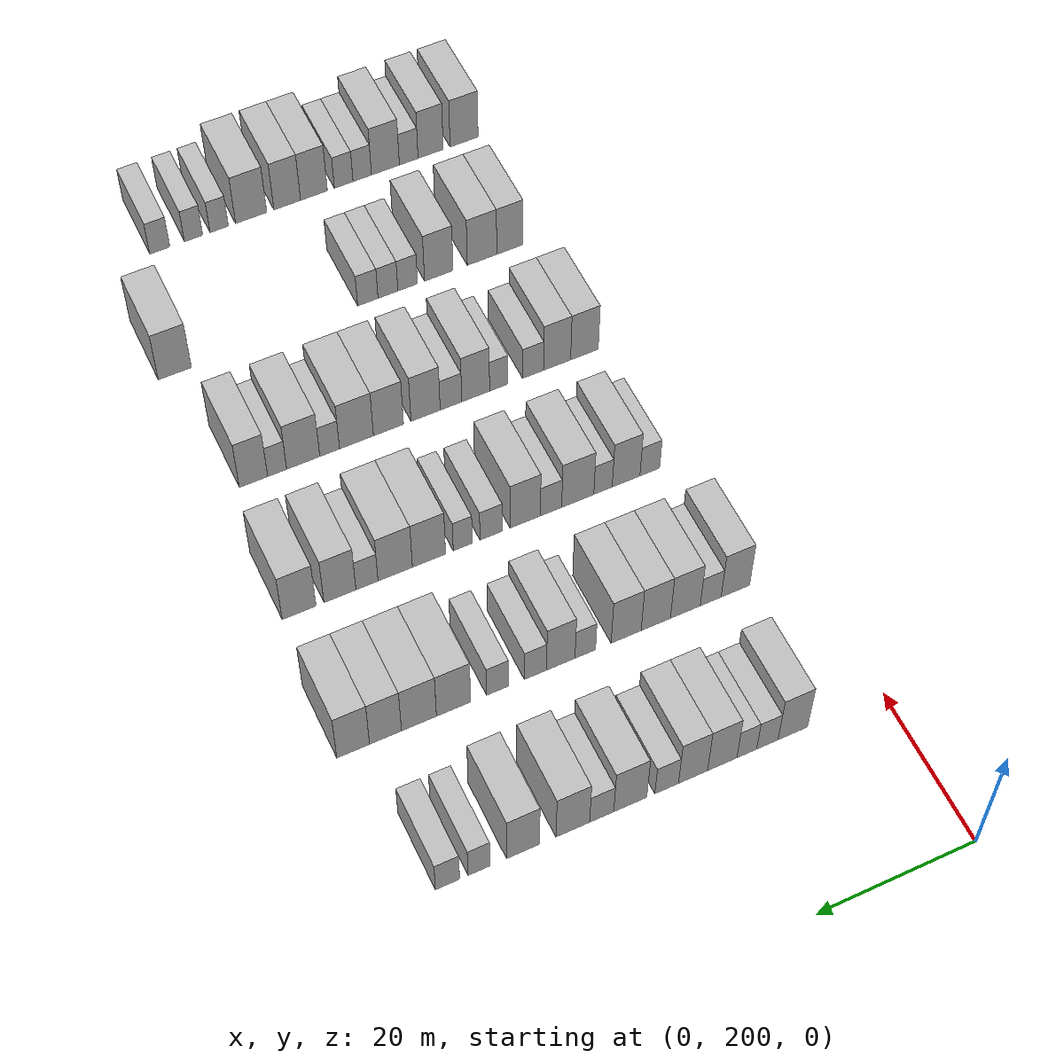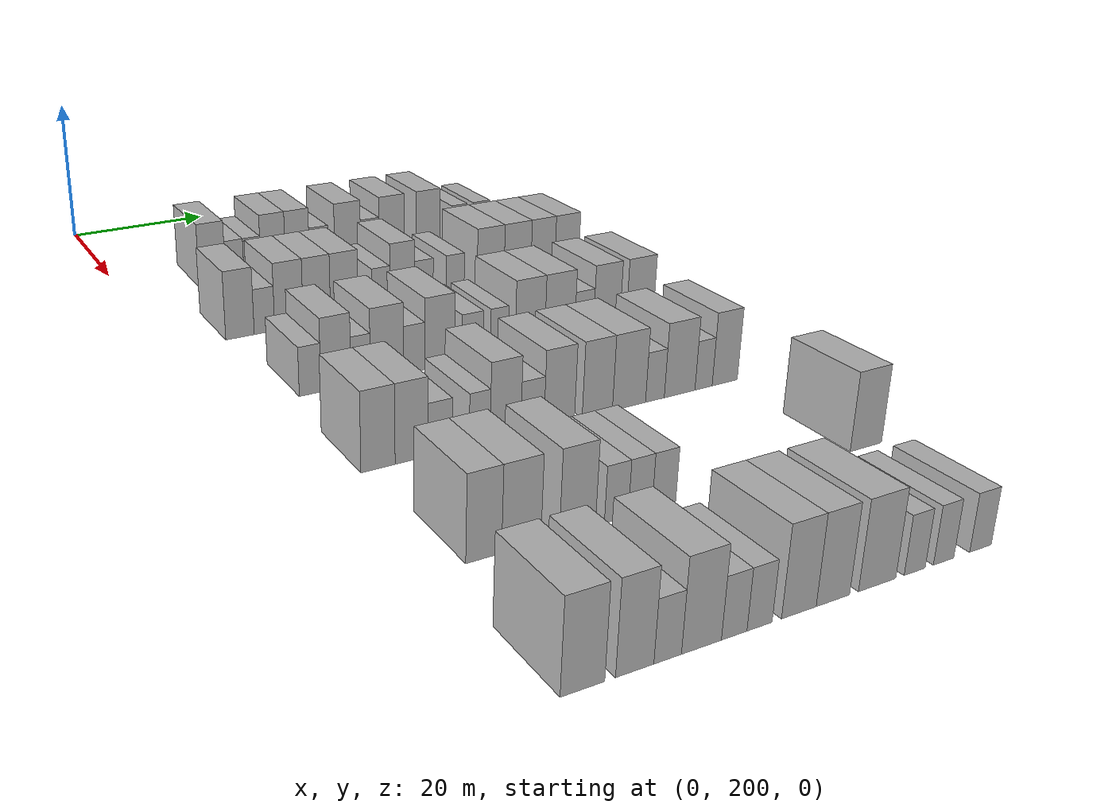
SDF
<sdf version="1.6">
 <world name="default">
  <model name="building_140">
   <static>1</static>
   <pose>25.0000 211.7727 0 0.000000 0.000000 0.000000</pose>
   <link name="link">
    <pose>0 0 4.50 0 0 0</pose>
    <collision name="collision"><geometry><box><size>10.0000 3.7884 9.0000</size></box></geometry></collision>
    <visual name="visual">
     <cast_shadows>0</cast_shadows>
     <geometry><box><size>10.0000 3.7884 9.0000</size></box></geometry>
     <material>
      <script>
       <uri>model://HANNAS_wall/materials/scripts</uri>
       <uri>model://HANNAS_wall/materials/textures</uri>
       <name>vrc/HANNAS_wall</name>
      </script>
     </material>
    </visual>
   </link>
  </model>
  <model name="building_141">
   <static>1</static>
   <pose>25.0000 215.0135 0 0.000000 0.000000 0.000000</pose>
   <link name="link">
    <pose>0 0 3.00 0 0 0</pose>
    <collision name="collision"><geometry><box><size>10.0000 2.6931 6.0000</size></box></geometry></collision>
    <visual name="visual">
     <cast_shadows>0</cast_shadows>
     <geometry><box><size>10.0000 2.6931 6.0000</size></box></geometry>
     <material>
      <script>
       <uri>model://HANNAS_wall/materials/scripts</uri>
       <uri>model://HANNAS_wall/materials/textures</uri>
       <name>vrc/HANNAS_wall</name>
      </script>
     </material>
    </visual>
   </link>
  </model>
  <model name="building_142">
   <static>1</static>
   <pose>25.0000 217.6169 0 0.000000 0.000000 0.000000</pose>
   <link name="link">
    <pose>0 0 3.00 0 0 0</pose>
    <collision name="collision"><geometry><box><size>10.0000 2.5136 6.0000</size></box></geometry></collision>
    <visual name="visual">
     <cast_shadows>0</cast_shadows>
     <geometry><box><size>10.0000 2.5136 6.0000</size></box></geometry>
     <material>
      <script>
       <uri>model://HANNAS_wall/materials/scripts</uri>
       <uri>model://HANNAS_wall/materials/textures</uri>
       <name>vrc/HANNAS_wall</name>
      </script>
     </material>
    </visual>
   </link>
  </model>
  <model name="building_143">
   <static>1</static>
   <pose>25.0000 220.7184 0 0.000000 0.000000 0.000000</pose>
   <link name="link">
    <pose>0 0 4.50 0 0 0</pose>
    <collision name="collision"><geometry><box><size>10.0000 3.6894 9.0000</size></box></geometry></collision>
    <visual name="visual">
     <cast_shadows>0</cast_shadows>
     <geometry><box><size>10.0000 3.6894 9.0000</size></box></geometry>
     <material>
      <script>
       <uri>model://HANNAS_wall/materials/scripts</uri>
       <uri>model://HANNAS_wall/materials/textures</uri>
       <name>vrc/HANNAS_wall</name>
      </script>
     </material>
    </visual>
   </link>
  </model>
  <model name="building_144">
   <static>1</static>
   <pose>25.0000 224.3788 0 0.000000 0.000000 0.000000</pose>
   <link name="link">
    <pose>0 0 4.50 0 0 0</pose>
    <collision name="collision"><geometry><box><size>10.0000 3.6313 9.0000</size></box></geometry></collision>
    <visual name="visual">
     <cast_shadows>0</cast_shadows>
     <geometry><box><size>10.0000 3.6313 9.0000</size></box></geometry>
     <material>
      <script>
       <uri>model://HANNAS_wall/materials/scripts</uri>
       <uri>model://HANNAS_wall/materials/textures</uri>
       <name>vrc/HANNAS_wall</name>
      </script>
     </material>
    </visual>
   </link>
  </model>
  <model name="building_145">
   <static>1</static>
   <pose>25.0000 227.6578 0 0.000000 0.000000 0.000000</pose>
   <link name="link">
    <pose>0 0 3.00 0 0 0</pose>
    <collision name="collision"><geometry><box><size>10.0000 2.9268 6.0000</size></box></geometry></collision>
    <visual name="visual">
     <cast_shadows>0</cast_shadows>
     <geometry><box><size>10.0000 2.9268 6.0000</size></box></geometry>
     <material>
      <script>
       <uri>model://HANNAS_wall/materials/scripts</uri>
       <uri>model://HANNAS_wall/materials/textures</uri>
       <name>vrc/HANNAS_wall</name>
      </script>
     </material>
    </visual>
   </link>
  </model>
  <model name="building_146">
   <static>1</static>
   <pose>25.0000 232.1601 0 0.000000 0.000000 0.000000</pose>
   <link name="link">
    <pose>0 0 4.50 0 0 0</pose>
    <collision name="collision"><geometry><box><size>10.0000 4.0779 9.0000</size></box></geometry></collision>
    <visual name="visual">
     <cast_shadows>0</cast_shadows>
     <geometry><box><size>10.0000 4.0779 9.0000</size></box></geometry>
     <material>
      <script>
       <uri>model://HANNAS_wall/materials/scripts</uri>
       <uri>model://HANNAS_wall/materials/textures</uri>
       <name>vrc/HANNAS_wall</name>
      </script>
     </material>
    </visual>
   </link>
  </model>
  <model name="building_147">
   <static>1</static>
   <pose>25.0000 235.6760 0 0.000000 0.000000 0.000000</pose>
   <link name="link">
    <pose>0 0 3.00 0 0 0</pose>
    <collision name="collision"><geometry><box><size>10.0000 2.9537 6.0000</size></box></geometry></collision>
    <visual name="visual">
     <cast_shadows>0</cast_shadows>
     <geometry><box><size>10.0000 2.9537 6.0000</size></box></geometry>
     <material>
      <script>
       <uri>model://HANNAS_wall/materials/scripts</uri>
       <uri>model://HANNAS_wall/materials/textures</uri>
       <name>vrc/HANNAS_wall</name>
      </script>
     </material>
    </visual>
   </link>
  </model>
  <model name="building_148">
   <static>1</static>
   <pose>25.0000 239.2007 0 0.000000 0.000000 0.000000</pose>
   <link name="link">
    <pose>0 0 4.50 0 0 0</pose>
    <collision name="collision"><geometry><box><size>10.0000 4.0957 9.0000</size></box></geometry></collision>
    <visual name="visual">
     <cast_shadows>0</cast_shadows>
     <geometry><box><size>10.0000 4.0957 9.0000</size></box></geometry>
     <material>
      <script>
       <uri>model://HANNAS_wall/materials/scripts</uri>
       <uri>model://HANNAS_wall/materials/textures</uri>
       <name>vrc/HANNAS_wall</name>
      </script>
     </material>
    </visual>
   </link>
  </model>
  <model name="building_149">
   <static>1</static>
   <pose>25.0000 245.2184 0 0.000000 0.000000 0.000000</pose>
   <link name="link">
    <pose>0 0 4.50 0 0 0</pose>
    <collision name="collision"><geometry><box><size>10.0000 3.9396 9.0000</size></box></geometry></collision>
    <visual name="visual">
     <cast_shadows>0</cast_shadows>
     <geometry><box><size>10.0000 3.9396 9.0000</size></box></geometry>
     <material>
      <script>
       <uri>model://HANNAS_wall/materials/scripts</uri>
       <uri>model://HANNAS_wall/materials/textures</uri>
       <name>vrc/HANNAS_wall</name>
      </script>
     </material>
    </visual>
   </link>
  </model>
  <model name="building_150">
   <static>1</static>
   <pose>25.0000 250.4902 0 0.000000 0.000000 0.000000</pose>
   <link name="link">
    <pose>0 0 3.00 0 0 0</pose>
    <collision name="collision"><geometry><box><size>10.0000 2.6041 6.0000</size></box></geometry></collision>
    <visual name="visual">
     <cast_shadows>0</cast_shadows>
     <geometry><box><size>10.0000 2.6041 6.0000</size></box></geometry>
     <material>
      <script>
       <uri>model://HANNAS_wall/materials/scripts</uri>
       <uri>model://HANNAS_wall/materials/textures</uri>
       <name>vrc/HANNAS_wall</name>
      </script>
     </material>
    </visual>
   </link>
  </model>
  <model name="building_151">
   <static>1</static>
   <pose>25.0000 254.2244 0 0.000000 0.000000 0.000000</pose>
   <link name="link">
    <pose>0 0 3.00 0 0 0</pose>
    <collision name="collision"><geometry><box><size>10.0000 2.8643 6.0000</size></box></geometry></collision>
    <visual name="visual">
     <cast_shadows>0</cast_shadows>
     <geometry><box><size>10.0000 2.8643 6.0000</size></box></geometry>
     <material>
      <script>
       <uri>model://HANNAS_wall/materials/scripts</uri>
       <uri>model://HANNAS_wall/materials/textures</uri>
       <name>vrc/HANNAS_wall</name>
      </script>
     </material>
    </visual>
   </link>
  </model>
  <model name="building_322">
   <static>1</static>
   <pose>44.0000 208.8375 0 0.000000 0.000000 0.000000</pose>
   <link name="link">
    <pose>0 0 4.50 0 0 0</pose>
    <collision name="collision"><geometry><box><size>10.0000 3.7492 9.0000</size></box></geometry></collision>
    <visual name="visual">
     <cast_shadows>0</cast_shadows>
     <geometry><box><size>10.0000 3.7492 9.0000</size></box></geometry>
     <material>
      <script>
       <uri>model://HANNAS_wall/materials/scripts</uri>
       <uri>model://HANNAS_wall/materials/textures</uri>
       <name>vrc/HANNAS_wall</name>
      </script>
     </material>
    </visual>
   </link>
  </model>
  <model name="building_323">
   <static>1</static>
   <pose>44.0000 212.0858 0 0.000000 0.000000 0.000000</pose>
   <link name="link">
    <pose>0 0 3.00 0 0 0</pose>
    <collision name="collision"><geometry><box><size>10.0000 2.7475 6.0000</size></box></geometry></collision>
    <visual name="visual">
     <cast_shadows>0</cast_shadows>
     <geometry><box><size>10.0000 2.7475 6.0000</size></box></geometry>
     <material>
      <script>
       <uri>model://HANNAS_wall/materials/scripts</uri>
       <uri>model://HANNAS_wall/materials/textures</uri>
       <name>vrc/HANNAS_wall</name>
      </script>
     </material>
    </visual>
   </link>
  </model>
  <model name="building_324">
   <static>1</static>
   <pose>44.0000 215.4020 0 0.000000 0.000000 0.000000</pose>
   <link name="link">
    <pose>0 0 4.50 0 0 0</pose>
    <collision name="collision"><geometry><box><size>10.0000 3.8847 9.0000</size></box></geometry></collision>
    <visual name="visual">
     <cast_shadows>0</cast_shadows>
     <geometry><box><size>10.0000 3.8847 9.0000</size></box></geometry>
     <material>
      <script>
       <uri>model://HANNAS_wall/materials/scripts</uri>
       <uri>model://HANNAS_wall/materials/textures</uri>
       <name>vrc/HANNAS_wall</name>
      </script>
     </material>
    </visual>
   </link>
  </model>
  <model name="building_325">
   <static>1</static>
   <pose>44.0000 219.2356 0 0.000000 0.000000 0.000000</pose>
   <link name="link">
    <pose>0 0 4.50 0 0 0</pose>
    <collision name="collision"><geometry><box><size>10.0000 3.7825 9.0000</size></box></geometry></collision>
    <visual name="visual">
     <cast_shadows>0</cast_shadows>
     <geometry><box><size>10.0000 3.7825 9.0000</size></box></geometry>
     <material>
      <script>
       <uri>model://HANNAS_wall/materials/scripts</uri>
       <uri>model://HANNAS_wall/materials/textures</uri>
       <name>vrc/HANNAS_wall</name>
      </script>
     </material>
    </visual>
   </link>
  </model>
  <model name="building_326">
   <static>1</static>
   <pose>44.0000 223.0625 0 0.000000 0.000000 0.000000</pose>
   <link name="link">
    <pose>0 0 4.50 0 0 0</pose>
    <collision name="collision"><geometry><box><size>10.0000 3.8713 9.0000</size></box></geometry></collision>
    <visual name="visual">
     <cast_shadows>0</cast_shadows>
     <geometry><box><size>10.0000 3.8713 9.0000</size></box></geometry>
     <material>
      <script>
       <uri>model://HANNAS_wall/materials/scripts</uri>
       <uri>model://HANNAS_wall/materials/textures</uri>
       <name>vrc/HANNAS_wall</name>
      </script>
     </material>
    </visual>
   </link>
  </model>
  <model name="building_327">
   <static>1</static>
   <pose>44.0000 228.3055 0 0.000000 0.000000 0.000000</pose>
   <link name="link">
    <pose>0 0 3.00 0 0 0</pose>
    <collision name="collision"><geometry><box><size>10.0000 2.6148 6.0000</size></box></geometry></collision>
    <visual name="visual">
     <cast_shadows>0</cast_shadows>
     <geometry><box><size>10.0000 2.6148 6.0000</size></box></geometry>
     <material>
      <script>
       <uri>model://HANNAS_wall/materials/scripts</uri>
       <uri>model://HANNAS_wall/materials/textures</uri>
       <name>vrc/HANNAS_wall</name>
      </script>
     </material>
    </visual>
   </link>
  </model>
  <model name="building_328">
   <static>1</static>
   <pose>44.0000 231.4243 0 0.000000 0.000000 0.000000</pose>
   <link name="link">
    <pose>0 0 4.50 0 0 0</pose>
    <collision name="collision"><geometry><box><size>10.0000 3.6228 9.0000</size></box></geometry></collision>
    <visual name="visual">
     <cast_shadows>0</cast_shadows>
     <geometry><box><size>10.0000 3.6228 9.0000</size></box></geometry>
     <material>
      <script>
       <uri>model://HANNAS_wall/materials/scripts</uri>
       <uri>model://HANNAS_wall/materials/textures</uri>
       <name>vrc/HANNAS_wall</name>
      </script>
     </material>
    </visual>
   </link>
  </model>
  <model name="building_329">
   <static>1</static>
   <pose>44.0000 234.6250 0 0.000000 0.000000 0.000000</pose>
   <link name="link">
    <pose>0 0 3.00 0 0 0</pose>
    <collision name="collision"><geometry><box><size>10.0000 2.7786 6.0000</size></box></geometry></collision>
    <visual name="visual">
     <cast_shadows>0</cast_shadows>
     <geometry><box><size>10.0000 2.7786 6.0000</size></box></geometry>
     <material>
      <script>
       <uri>model://HANNAS_wall/materials/scripts</uri>
       <uri>model://HANNAS_wall/materials/textures</uri>
       <name>vrc/HANNAS_wall</name>
      </script>
     </material>
    </visual>
   </link>
  </model>
  <model name="building_330">
   <static>1</static>
   <pose>44.0000 239.3749 0 0.000000 0.000000 0.000000</pose>
   <link name="link">
    <pose>0 0 3.00 0 0 0</pose>
    <collision name="collision"><geometry><box><size>10.0000 2.7212 6.0000</size></box></geometry></collision>
    <visual name="visual">
     <cast_shadows>0</cast_shadows>
     <geometry><box><size>10.0000 2.7212 6.0000</size></box></geometry>
     <material>
      <script>
       <uri>model://HANNAS_wall/materials/scripts</uri>
       <uri>model://HANNAS_wall/materials/textures</uri>
       <name>vrc/HANNAS_wall</name>
      </script>
     </material>
    </visual>
   </link>
  </model>
  <model name="building_331">
   <static>1</static>
   <pose>44.0000 244.8494 0 0.000000 0.000000 0.000000</pose>
   <link name="link">
    <pose>0 0 4.50 0 0 0</pose>
    <collision name="collision"><geometry><box><size>10.0000 4.2278 9.0000</size></box></geometry></collision>
    <visual name="visual">
     <cast_shadows>0</cast_shadows>
     <geometry><box><size>10.0000 4.2278 9.0000</size></box></geometry>
     <material>
      <script>
       <uri>model://HANNAS_wall/materials/scripts</uri>
       <uri>model://HANNAS_wall/materials/textures</uri>
       <name>vrc/HANNAS_wall</name>
      </script>
     </material>
    </visual>
   </link>
  </model>
  <model name="building_332">
   <static>1</static>
   <pose>44.0000 249.1106 0 0.000000 0.000000 0.000000</pose>
   <link name="link">
    <pose>0 0 4.50 0 0 0</pose>
    <collision name="collision"><geometry><box><size>10.0000 4.2945 9.0000</size></box></geometry></collision>
    <visual name="visual">
     <cast_shadows>0</cast_shadows>
     <geometry><box><size>10.0000 4.2945 9.0000</size></box></geometry>
     <material>
      <script>
       <uri>model://HANNAS_wall/materials/scripts</uri>
       <uri>model://HANNAS_wall/materials/textures</uri>
       <name>vrc/HANNAS_wall</name>
      </script>
     </material>
    </visual>
   </link>
  </model>
  <model name="building_333">
   <static>1</static>
   <pose>44.0000 253.2051 0 0.000000 0.000000 0.000000</pose>
   <link name="link">
    <pose>0 0 4.50 0 0 0</pose>
    <collision name="collision"><geometry><box><size>10.0000 3.8946 9.0000</size></box></geometry></collision>
    <visual name="visual">
     <cast_shadows>0</cast_shadows>
     <geometry><box><size>10.0000 3.8946 9.0000</size></box></geometry>
     <material>
      <script>
       <uri>model://HANNAS_wall/materials/scripts</uri>
       <uri>model://HANNAS_wall/materials/textures</uri>
       <name>vrc/HANNAS_wall</name>
      </script>
     </material>
    </visual>
   </link>
  </model>
  <model name="building_334">
   <static>1</static>
   <pose>44.0000 257.1389 0 0.000000 0.000000 0.000000</pose>
   <link name="link">
    <pose>0 0 4.50 0 0 0</pose>
    <collision name="collision"><geometry><box><size>10.0000 3.9730 9.0000</size></box></geometry></collision>
    <visual name="visual">
     <cast_shadows>0</cast_shadows>
     <geometry><box><size>10.0000 3.9730 9.0000</size></box></geometry>
     <material>
      <script>
       <uri>model://HANNAS_wall/materials/scripts</uri>
       <uri>model://HANNAS_wall/materials/textures</uri>
       <name>vrc/HANNAS_wall</name>
      </script>
     </material>
    </visual>
   </link>
  </model>
  <model name="building_494">
   <static>1</static>
   <pose>63.0000 210.2831 0 0.000000 0.000000 0.000000</pose>
   <link name="link">
    <pose>0 0 3.00 0 0 0</pose>
    <collision name="collision"><geometry><box><size>10.0000 2.6488 6.0000</size></box></geometry></collision>
    <visual name="visual">
     <cast_shadows>0</cast_shadows>
     <geometry><box><size>10.0000 2.6488 6.0000</size></box></geometry>
     <material>
      <script>
       <uri>model://HANNAS_wall/materials/scripts</uri>
       <uri>model://HANNAS_wall/materials/textures</uri>
       <name>vrc/HANNAS_wall</name>
      </script>
     </material>
    </visual>
   </link>
  </model>
  <model name="building_495">
   <static>1</static>
   <pose>63.0000 213.4709 0 0.000000 0.000000 0.000000</pose>
   <link name="link">
    <pose>0 0 4.50 0 0 0</pose>
    <collision name="collision"><geometry><box><size>10.0000 3.7268 9.0000</size></box></geometry></collision>
    <visual name="visual">
     <cast_shadows>0</cast_shadows>
     <geometry><box><size>10.0000 3.7268 9.0000</size></box></geometry>
     <material>
      <script>
       <uri>model://HANNAS_wall/materials/scripts</uri>
       <uri>model://HANNAS_wall/materials/textures</uri>
       <name>vrc/HANNAS_wall</name>
      </script>
     </material>
    </visual>
   </link>
  </model>
  <model name="building_496">
   <static>1</static>
   <pose>63.0000 216.5606 0 0.000000 0.000000 0.000000</pose>
   <link name="link">
    <pose>0 0 3.00 0 0 0</pose>
    <collision name="collision"><geometry><box><size>10.0000 2.4525 6.0000</size></box></geometry></collision>
    <visual name="visual">
     <cast_shadows>0</cast_shadows>
     <geometry><box><size>10.0000 2.4525 6.0000</size></box></geometry>
     <material>
      <script>
       <uri>model://HANNAS_wall/materials/scripts</uri>
       <uri>model://HANNAS_wall/materials/textures</uri>
       <name>vrc/HANNAS_wall</name>
      </script>
     </material>
    </visual>
   </link>
  </model>
  <model name="building_497">
   <static>1</static>
   <pose>63.0000 219.9248 0 0.000000 0.000000 0.000000</pose>
   <link name="link">
    <pose>0 0 4.50 0 0 0</pose>
    <collision name="collision"><geometry><box><size>10.0000 4.2760 9.0000</size></box></geometry></collision>
    <visual name="visual">
     <cast_shadows>0</cast_shadows>
     <geometry><box><size>10.0000 4.2760 9.0000</size></box></geometry>
     <material>
      <script>
       <uri>model://HANNAS_wall/materials/scripts</uri>
       <uri>model://HANNAS_wall/materials/textures</uri>
       <name>vrc/HANNAS_wall</name>
      </script>
     </material>
    </visual>
   </link>
  </model>
  <model name="building_498">
   <static>1</static>
   <pose>63.0000 223.4700 0 0.000000 0.000000 0.000000</pose>
   <link name="link">
    <pose>0 0 3.00 0 0 0</pose>
    <collision name="collision"><geometry><box><size>10.0000 2.8144 6.0000</size></box></geometry></collision>
    <visual name="visual">
     <cast_shadows>0</cast_shadows>
     <geometry><box><size>10.0000 2.8144 6.0000</size></box></geometry>
     <material>
      <script>
       <uri>model://HANNAS_wall/materials/scripts</uri>
       <uri>model://HANNAS_wall/materials/textures</uri>
       <name>vrc/HANNAS_wall</name>
      </script>
     </material>
    </visual>
   </link>
  </model>
  <model name="building_499">
   <static>1</static>
   <pose>63.0000 226.8602 0 0.000000 0.000000 0.000000</pose>
   <link name="link">
    <pose>0 0 4.50 0 0 0</pose>
    <collision name="collision"><geometry><box><size>10.0000 3.9658 9.0000</size></box></geometry></collision>
    <visual name="visual">
     <cast_shadows>0</cast_shadows>
     <geometry><box><size>10.0000 3.9658 9.0000</size></box></geometry>
     <material>
      <script>
       <uri>model://HANNAS_wall/materials/scripts</uri>
       <uri>model://HANNAS_wall/materials/textures</uri>
       <name>vrc/HANNAS_wall</name>
      </script>
     </material>
    </visual>
   </link>
  </model>
  <model name="building_500">
   <static>1</static>
   <pose>63.0000 231.3030 0 0.000000 0.000000 0.000000</pose>
   <link name="link">
    <pose>0 0 3.00 0 0 0</pose>
    <collision name="collision"><geometry><box><size>10.0000 2.9198 6.0000</size></box></geometry></collision>
    <visual name="visual">
     <cast_shadows>0</cast_shadows>
     <geometry><box><size>10.0000 2.9198 6.0000</size></box></geometry>
     <material>
      <script>
       <uri>model://HANNAS_wall/materials/scripts</uri>
       <uri>model://HANNAS_wall/materials/textures</uri>
       <name>vrc/HANNAS_wall</name>
      </script>
     </material>
    </visual>
   </link>
  </model>
  <model name="building_501">
   <static>1</static>
   <pose>63.0000 234.9936 0 0.000000 0.000000 0.000000</pose>
   <link name="link">
    <pose>0 0 3.00 0 0 0</pose>
    <collision name="collision"><geometry><box><size>10.0000 2.4616 6.0000</size></box></geometry></collision>
    <visual name="visual">
     <cast_shadows>0</cast_shadows>
     <geometry><box><size>10.0000 2.4616 6.0000</size></box></geometry>
     <material>
      <script>
       <uri>model://HANNAS_wall/materials/scripts</uri>
       <uri>model://HANNAS_wall/materials/textures</uri>
       <name>vrc/HANNAS_wall</name>
      </script>
     </material>
    </visual>
   </link>
  </model>
  <model name="building_502">
   <static>1</static>
   <pose>63.0000 239.3509 0 0.000000 0.000000 0.000000</pose>
   <link name="link">
    <pose>0 0 4.50 0 0 0</pose>
    <collision name="collision"><geometry><box><size>10.0000 4.2530 9.0000</size></box></geometry></collision>
    <visual name="visual">
     <cast_shadows>0</cast_shadows>
     <geometry><box><size>10.0000 4.2530 9.0000</size></box></geometry>
     <material>
      <script>
       <uri>model://HANNAS_wall/materials/scripts</uri>
       <uri>model://HANNAS_wall/materials/textures</uri>
       <name>vrc/HANNAS_wall</name>
      </script>
     </material>
    </visual>
   </link>
  </model>
  <model name="building_503">
   <static>1</static>
   <pose>63.0000 243.6687 0 0.000000 0.000000 0.000000</pose>
   <link name="link">
    <pose>0 0 4.50 0 0 0</pose>
    <collision name="collision"><geometry><box><size>10.0000 4.3825 9.0000</size></box></geometry></collision>
    <visual name="visual">
     <cast_shadows>0</cast_shadows>
     <geometry><box><size>10.0000 4.3825 9.0000</size></box></geometry>
     <material>
      <script>
       <uri>model://HANNAS_wall/materials/scripts</uri>
       <uri>model://HANNAS_wall/materials/textures</uri>
       <name>vrc/HANNAS_wall</name>
      </script>
     </material>
    </visual>
   </link>
  </model>
  <model name="building_504">
   <static>1</static>
   <pose>63.0000 247.2627 0 0.000000 0.000000 0.000000</pose>
   <link name="link">
    <pose>0 0 3.00 0 0 0</pose>
    <collision name="collision"><geometry><box><size>10.0000 2.8055 6.0000</size></box></geometry></collision>
    <visual name="visual">
     <cast_shadows>0</cast_shadows>
     <geometry><box><size>10.0000 2.8055 6.0000</size></box></geometry>
     <material>
      <script>
       <uri>model://HANNAS_wall/materials/scripts</uri>
       <uri>model://HANNAS_wall/materials/textures</uri>
       <name>vrc/HANNAS_wall</name>
      </script>
     </material>
    </visual>
   </link>
  </model>
  <model name="building_505">
   <static>1</static>
   <pose>63.0000 250.6795 0 0.000000 0.000000 0.000000</pose>
   <link name="link">
    <pose>0 0 4.50 0 0 0</pose>
    <collision name="collision"><geometry><box><size>10.0000 4.0280 9.0000</size></box></geometry></collision>
    <visual name="visual">
     <cast_shadows>0</cast_shadows>
     <geometry><box><size>10.0000 4.0280 9.0000</size></box></geometry>
     <material>
      <script>
       <uri>model://HANNAS_wall/materials/scripts</uri>
       <uri>model://HANNAS_wall/materials/textures</uri>
       <name>vrc/HANNAS_wall</name>
      </script>
     </material>
    </visual>
   </link>
  </model>
  <model name="building_506">
   <static>1</static>
   <pose>63.0000 255.8078 0 0.000000 0.000000 0.000000</pose>
   <link name="link">
    <pose>0 0 4.50 0 0 0</pose>
    <collision name="collision"><geometry><box><size>10.0000 4.2285 9.0000</size></box></geometry></collision>
    <visual name="visual">
     <cast_shadows>0</cast_shadows>
     <geometry><box><size>10.0000 4.2285 9.0000</size></box></geometry>
     <material>
      <script>
       <uri>model://HANNAS_wall/materials/scripts</uri>
       <uri>model://HANNAS_wall/materials/textures</uri>
       <name>vrc/HANNAS_wall</name>
      </script>
     </material>
    </visual>
   </link>
  </model>
  <model name="building_665">
   <static>1</static>
   <pose>82.0000 209.6722 0 0.000000 0.000000 0.000000</pose>
   <link name="link">
    <pose>0 0 4.50 0 0 0</pose>
    <collision name="collision"><geometry><box><size>10.0000 3.8171 9.0000</size></box></geometry></collision>
    <visual name="visual">
     <cast_shadows>0</cast_shadows>
     <geometry><box><size>10.0000 3.8171 9.0000</size></box></geometry>
     <material>
      <script>
       <uri>model://HANNAS_wall/materials/scripts</uri>
       <uri>model://HANNAS_wall/materials/textures</uri>
       <name>vrc/HANNAS_wall</name>
      </script>
     </material>
    </visual>
   </link>
  </model>
  <model name="building_666">
   <static>1</static>
   <pose>82.0000 213.4463 0 0.000000 0.000000 0.000000</pose>
   <link name="link">
    <pose>0 0 4.50 0 0 0</pose>
    <collision name="collision"><geometry><box><size>10.0000 3.7313 9.0000</size></box></geometry></collision>
    <visual name="visual">
     <cast_shadows>0</cast_shadows>
     <geometry><box><size>10.0000 3.7313 9.0000</size></box></geometry>
     <material>
      <script>
       <uri>model://HANNAS_wall/materials/scripts</uri>
       <uri>model://HANNAS_wall/materials/textures</uri>
       <name>vrc/HANNAS_wall</name>
      </script>
     </material>
    </visual>
   </link>
  </model>
  <model name="building_667">
   <static>1</static>
   <pose>82.0000 216.7362 0 0.000000 0.000000 0.000000</pose>
   <link name="link">
    <pose>0 0 3.00 0 0 0</pose>
    <collision name="collision"><geometry><box><size>10.0000 2.8485 6.0000</size></box></geometry></collision>
    <visual name="visual">
     <cast_shadows>0</cast_shadows>
     <geometry><box><size>10.0000 2.8485 6.0000</size></box></geometry>
     <material>
      <script>
       <uri>model://HANNAS_wall/materials/scripts</uri>
       <uri>model://HANNAS_wall/materials/textures</uri>
       <name>vrc/HANNAS_wall</name>
      </script>
     </material>
    </visual>
   </link>
  </model>
  <model name="building_668">
   <static>1</static>
   <pose>82.0000 221.4112 0 0.000000 0.000000 0.000000</pose>
   <link name="link">
    <pose>0 0 3.00 0 0 0</pose>
    <collision name="collision"><geometry><box><size>10.0000 2.5014 6.0000</size></box></geometry></collision>
    <visual name="visual">
     <cast_shadows>0</cast_shadows>
     <geometry><box><size>10.0000 2.5014 6.0000</size></box></geometry>
     <material>
      <script>
       <uri>model://HANNAS_wall/materials/scripts</uri>
       <uri>model://HANNAS_wall/materials/textures</uri>
       <name>vrc/HANNAS_wall</name>
      </script>
     </material>
    </visual>
   </link>
  </model>
  <model name="building_669">
   <static>1</static>
   <pose>82.0000 224.5415 0 0.000000 0.000000 0.000000</pose>
   <link name="link">
    <pose>0 0 4.50 0 0 0</pose>
    <collision name="collision"><geometry><box><size>10.0000 3.7593 9.0000</size></box></geometry></collision>
    <visual name="visual">
     <cast_shadows>0</cast_shadows>
     <geometry><box><size>10.0000 3.7593 9.0000</size></box></geometry>
     <material>
      <script>
       <uri>model://HANNAS_wall/materials/scripts</uri>
       <uri>model://HANNAS_wall/materials/textures</uri>
       <name>vrc/HANNAS_wall</name>
      </script>
     </material>
    </visual>
   </link>
  </model>
  <model name="building_670">
   <static>1</static>
   <pose>82.0000 227.8722 0 0.000000 0.000000 0.000000</pose>
   <link name="link">
    <pose>0 0 3.00 0 0 0</pose>
    <collision name="collision"><geometry><box><size>10.0000 2.9020 6.0000</size></box></geometry></collision>
    <visual name="visual">
     <cast_shadows>0</cast_shadows>
     <geometry><box><size>10.0000 2.9020 6.0000</size></box></geometry>
     <material>
      <script>
       <uri>model://HANNAS_wall/materials/scripts</uri>
       <uri>model://HANNAS_wall/materials/textures</uri>
       <name>vrc/HANNAS_wall</name>
      </script>
     </material>
    </visual>
   </link>
  </model>
  <model name="building_671">
   <static>1</static>
   <pose>82.0000 231.2756 0 0.000000 0.000000 0.000000</pose>
   <link name="link">
    <pose>0 0 4.50 0 0 0</pose>
    <collision name="collision"><geometry><box><size>10.0000 3.9047 9.0000</size></box></geometry></collision>
    <visual name="visual">
     <cast_shadows>0</cast_shadows>
     <geometry><box><size>10.0000 3.9047 9.0000</size></box></geometry>
     <material>
      <script>
       <uri>model://HANNAS_wall/materials/scripts</uri>
       <uri>model://HANNAS_wall/materials/textures</uri>
       <name>vrc/HANNAS_wall</name>
      </script>
     </material>
    </visual>
   </link>
  </model>
  <model name="building_672">
   <static>1</static>
   <pose>82.0000 236.2185 0 0.000000 0.000000 0.000000</pose>
   <link name="link">
    <pose>0 0 4.50 0 0 0</pose>
    <collision name="collision"><geometry><box><size>10.0000 3.9810 9.0000</size></box></geometry></collision>
    <visual name="visual">
     <cast_shadows>0</cast_shadows>
     <geometry><box><size>10.0000 3.9810 9.0000</size></box></geometry>
     <material>
      <script>
       <uri>model://HANNAS_wall/materials/scripts</uri>
       <uri>model://HANNAS_wall/materials/textures</uri>
       <name>vrc/HANNAS_wall</name>
      </script>
     </material>
    </visual>
   </link>
  </model>
  <model name="building_673">
   <static>1</static>
   <pose>82.0000 240.4436 0 0.000000 0.000000 0.000000</pose>
   <link name="link">
    <pose>0 0 4.50 0 0 0</pose>
    <collision name="collision"><geometry><box><size>10.0000 4.4692 9.0000</size></box></geometry></collision>
    <visual name="visual">
     <cast_shadows>0</cast_shadows>
     <geometry><box><size>10.0000 4.4692 9.0000</size></box></geometry>
     <material>
      <script>
       <uri>model://HANNAS_wall/materials/scripts</uri>
       <uri>model://HANNAS_wall/materials/textures</uri>
       <name>vrc/HANNAS_wall</name>
      </script>
     </material>
    </visual>
   </link>
  </model>
  <model name="building_674">
   <static>1</static>
   <pose>82.0000 243.9708 0 0.000000 0.000000 0.000000</pose>
   <link name="link">
    <pose>0 0 3.00 0 0 0</pose>
    <collision name="collision"><geometry><box><size>10.0000 2.5851 6.0000</size></box></geometry></collision>
    <visual name="visual">
     <cast_shadows>0</cast_shadows>
     <geometry><box><size>10.0000 2.5851 6.0000</size></box></geometry>
     <material>
      <script>
       <uri>model://HANNAS_wall/materials/scripts</uri>
       <uri>model://HANNAS_wall/materials/textures</uri>
       <name>vrc/HANNAS_wall</name>
      </script>
     </material>
    </visual>
   </link>
  </model>
  <model name="building_675">
   <static>1</static>
   <pose>82.0000 247.4194 0 0.000000 0.000000 0.000000</pose>
   <link name="link">
    <pose>0 0 4.50 0 0 0</pose>
    <collision name="collision"><geometry><box><size>10.0000 4.3121 9.0000</size></box></geometry></collision>
    <visual name="visual">
     <cast_shadows>0</cast_shadows>
     <geometry><box><size>10.0000 4.3121 9.0000</size></box></geometry>
     <material>
      <script>
       <uri>model://HANNAS_wall/materials/scripts</uri>
       <uri>model://HANNAS_wall/materials/textures</uri>
       <name>vrc/HANNAS_wall</name>
      </script>
     </material>
    </visual>
   </link>
  </model>
  <model name="building_676">
   <static>1</static>
   <pose>82.0000 250.8050 0 0.000000 0.000000 0.000000</pose>
   <link name="link">
    <pose>0 0 3.00 0 0 0</pose>
    <collision name="collision"><geometry><box><size>10.0000 2.4592 6.0000</size></box></geometry></collision>
    <visual name="visual">
     <cast_shadows>0</cast_shadows>
     <geometry><box><size>10.0000 2.4592 6.0000</size></box></geometry>
     <material>
      <script>
       <uri>model://HANNAS_wall/materials/scripts</uri>
       <uri>model://HANNAS_wall/materials/textures</uri>
       <name>vrc/HANNAS_wall</name>
      </script>
     </material>
    </visual>
   </link>
  </model>
  <model name="building_677">
   <static>1</static>
   <pose>82.0000 253.8649 0 0.000000 0.000000 0.000000</pose>
   <link name="link">
    <pose>0 0 4.50 0 0 0</pose>
    <collision name="collision"><geometry><box><size>10.0000 3.6606 9.0000</size></box></geometry></collision>
    <visual name="visual">
     <cast_shadows>0</cast_shadows>
     <geometry><box><size>10.0000 3.6606 9.0000</size></box></geometry>
     <material>
      <script>
       <uri>model://HANNAS_wall/materials/scripts</uri>
       <uri>model://HANNAS_wall/materials/textures</uri>
       <name>vrc/HANNAS_wall</name>
      </script>
     </material>
    </visual>
   </link>
  </model>
  <model name="building_847">
   <static>1</static>
   <pose>101.0000 210.9695 0 0.000000 0.000000 0.000000</pose>
   <link name="link">
    <pose>0 0 4.50 0 0 0</pose>
    <collision name="collision"><geometry><box><size>10.0000 3.6721 9.0000</size></box></geometry></collision>
    <visual name="visual">
     <cast_shadows>0</cast_shadows>
     <geometry><box><size>10.0000 3.6721 9.0000</size></box></geometry>
     <material>
      <script>
       <uri>model://HANNAS_wall/materials/scripts</uri>
       <uri>model://HANNAS_wall/materials/textures</uri>
       <name>vrc/HANNAS_wall</name>
      </script>
     </material>
    </visual>
   </link>
  </model>
  <model name="building_848">
   <static>1</static>
   <pose>101.0000 214.8764 0 0.000000 0.000000 0.000000</pose>
   <link name="link">
    <pose>0 0 4.50 0 0 0</pose>
    <collision name="collision"><geometry><box><size>10.0000 4.1416 9.0000</size></box></geometry></collision>
    <visual name="visual">
     <cast_shadows>0</cast_shadows>
     <geometry><box><size>10.0000 4.1416 9.0000</size></box></geometry>
     <material>
      <script>
       <uri>model://HANNAS_wall/materials/scripts</uri>
       <uri>model://HANNAS_wall/materials/textures</uri>
       <name>vrc/HANNAS_wall</name>
      </script>
     </material>
    </visual>
   </link>
  </model>
  <model name="building_849">
   <static>1</static>
   <pose>101.0000 220.9297 0 0.000000 0.000000 0.000000</pose>
   <link name="link">
    <pose>0 0 4.50 0 0 0</pose>
    <collision name="collision"><geometry><box><size>10.0000 3.9650 9.0000</size></box></geometry></collision>
    <visual name="visual">
     <cast_shadows>0</cast_shadows>
     <geometry><box><size>10.0000 3.9650 9.0000</size></box></geometry>
     <material>
      <script>
       <uri>model://HANNAS_wall/materials/scripts</uri>
       <uri>model://HANNAS_wall/materials/textures</uri>
       <name>vrc/HANNAS_wall</name>
      </script>
     </material>
    </visual>
   </link>
  </model>
  <model name="building_850">
   <static>1</static>
   <pose>101.0000 225.2633 0 0.000000 0.000000 0.000000</pose>
   <link name="link">
    <pose>0 0 3.00 0 0 0</pose>
    <collision name="collision"><geometry><box><size>10.0000 2.7022 6.0000</size></box></geometry></collision>
    <visual name="visual">
     <cast_shadows>0</cast_shadows>
     <geometry><box><size>10.0000 2.7022 6.0000</size></box></geometry>
     <material>
      <script>
       <uri>model://HANNAS_wall/materials/scripts</uri>
       <uri>model://HANNAS_wall/materials/textures</uri>
       <name>vrc/HANNAS_wall</name>
      </script>
     </material>
    </visual>
   </link>
  </model>
  <model name="building_851">
   <static>1</static>
   <pose>101.0000 227.9867 0 0.000000 0.000000 0.000000</pose>
   <link name="link">
    <pose>0 0 3.00 0 0 0</pose>
    <collision name="collision"><geometry><box><size>10.0000 2.7446 6.0000</size></box></geometry></collision>
    <visual name="visual">
     <cast_shadows>0</cast_shadows>
     <geometry><box><size>10.0000 2.7446 6.0000</size></box></geometry>
     <material>
      <script>
       <uri>model://HANNAS_wall/materials/scripts</uri>
       <uri>model://HANNAS_wall/materials/textures</uri>
       <name>vrc/HANNAS_wall</name>
      </script>
     </material>
    </visual>
   </link>
  </model>
  <model name="building_852">
   <static>1</static>
   <pose>101.0000 230.7532 0 0.000000 0.000000 0.000000</pose>
   <link name="link">
    <pose>0 0 3.00 0 0 0</pose>
    <collision name="collision"><geometry><box><size>10.0000 2.7885 6.0000</size></box></geometry></collision>
    <visual name="visual">
     <cast_shadows>0</cast_shadows>
     <geometry><box><size>10.0000 2.7885 6.0000</size></box></geometry>
     <material>
      <script>
       <uri>model://HANNAS_wall/materials/scripts</uri>
       <uri>model://HANNAS_wall/materials/textures</uri>
       <name>vrc/HANNAS_wall</name>
      </script>
     </material>
    </visual>
   </link>
  </model>
  <model name="building_853">
   <static>1</static>
   <pose>101.0000 256.7089 0 0.000000 0.000000 0.000000</pose>
   <link name="link">
    <pose>0 0 4.50 0 0 0</pose>
    <collision name="collision"><geometry><box><size>10.0000 4.3743 9.0000</size></box></geometry></collision>
    <visual name="visual">
     <cast_shadows>0</cast_shadows>
     <geometry><box><size>10.0000 4.3743 9.0000</size></box></geometry>
     <material>
      <script>
       <uri>model://HANNAS_wall/materials/scripts</uri>
       <uri>model://HANNAS_wall/materials/textures</uri>
       <name>vrc/HANNAS_wall</name>
      </script>
     </material>
    </visual>
   </link>
  </model>
  <model name="building_1024">
   <static>1</static>
   <pose>120.0000 208.6798 0 0.000000 0.000000 0.000000</pose>
   <link name="link">
    <pose>0 0 4.50 0 0 0</pose>
    <collision name="collision"><geometry><box><size>10.0000 4.0680 9.0000</size></box></geometry></collision>
    <visual name="visual">
     <cast_shadows>0</cast_shadows>
     <geometry><box><size>10.0000 4.0680 9.0000</size></box></geometry>
     <material>
      <script>
       <uri>model://HANNAS_wall/materials/scripts</uri>
       <uri>model://HANNAS_wall/materials/textures</uri>
       <name>vrc/HANNAS_wall</name>
      </script>
     </material>
    </visual>
   </link>
  </model>
  <model name="building_1025">
   <static>1</static>
   <pose>120.0000 213.5304 0 0.000000 0.000000 0.000000</pose>
   <link name="link">
    <pose>0 0 4.50 0 0 0</pose>
    <collision name="collision"><geometry><box><size>10.0000 3.6331 9.0000</size></box></geometry></collision>
    <visual name="visual">
     <cast_shadows>0</cast_shadows>
     <geometry><box><size>10.0000 3.6331 9.0000</size></box></geometry>
     <material>
      <script>
       <uri>model://HANNAS_wall/materials/scripts</uri>
       <uri>model://HANNAS_wall/materials/textures</uri>
       <name>vrc/HANNAS_wall</name>
      </script>
     </material>
    </visual>
   </link>
  </model>
  <model name="building_1026">
   <static>1</static>
   <pose>120.0000 216.6915 0 0.000000 0.000000 0.000000</pose>
   <link name="link">
    <pose>0 0 3.00 0 0 0</pose>
    <collision name="collision"><geometry><box><size>10.0000 2.6892 6.0000</size></box></geometry></collision>
    <visual name="visual">
     <cast_shadows>0</cast_shadows>
     <geometry><box><size>10.0000 2.6892 6.0000</size></box></geometry>
     <material>
      <script>
       <uri>model://HANNAS_wall/materials/scripts</uri>
       <uri>model://HANNAS_wall/materials/textures</uri>
       <name>vrc/HANNAS_wall</name>
      </script>
     </material>
    </visual>
   </link>
  </model>
  <model name="building_1027">
   <static>1</static>
   <pose>120.0000 220.0344 0 0.000000 0.000000 0.000000</pose>
   <link name="link">
    <pose>0 0 4.50 0 0 0</pose>
    <collision name="collision"><geometry><box><size>10.0000 3.9966 9.0000</size></box></geometry></collision>
    <visual name="visual">
     <cast_shadows>0</cast_shadows>
     <geometry><box><size>10.0000 3.9966 9.0000</size></box></geometry>
     <material>
      <script>
       <uri>model://HANNAS_wall/materials/scripts</uri>
       <uri>model://HANNAS_wall/materials/textures</uri>
       <name>vrc/HANNAS_wall</name>
      </script>
     </material>
    </visual>
   </link>
  </model>
  <model name="building_1028">
   <static>1</static>
   <pose>120.0000 223.3450 0 0.000000 0.000000 0.000000</pose>
   <link name="link">
    <pose>0 0 3.00 0 0 0</pose>
    <collision name="collision"><geometry><box><size>10.0000 2.6245 6.0000</size></box></geometry></collision>
    <visual name="visual">
     <cast_shadows>0</cast_shadows>
     <geometry><box><size>10.0000 2.6245 6.0000</size></box></geometry>
     <material>
      <script>
       <uri>model://HANNAS_wall/materials/scripts</uri>
       <uri>model://HANNAS_wall/materials/textures</uri>
       <name>vrc/HANNAS_wall</name>
      </script>
     </material>
    </visual>
   </link>
  </model>
  <model name="building_1029">
   <static>1</static>
   <pose>120.0000 225.9796 0 0.000000 0.000000 0.000000</pose>
   <link name="link">
    <pose>0 0 3.00 0 0 0</pose>
    <collision name="collision"><geometry><box><size>10.0000 2.6448 6.0000</size></box></geometry></collision>
    <visual name="visual">
     <cast_shadows>0</cast_shadows>
     <geometry><box><size>10.0000 2.6448 6.0000</size></box></geometry>
     <material>
      <script>
       <uri>model://HANNAS_wall/materials/scripts</uri>
       <uri>model://HANNAS_wall/materials/textures</uri>
       <name>vrc/HANNAS_wall</name>
      </script>
     </material>
    </visual>
   </link>
  </model>
  <model name="building_1030">
   <static>1</static>
   <pose>120.0000 230.1850 0 0.000000 0.000000 0.000000</pose>
   <link name="link">
    <pose>0 0 4.50 0 0 0</pose>
    <collision name="collision"><geometry><box><size>10.0000 3.7659 9.0000</size></box></geometry></collision>
    <visual name="visual">
     <cast_shadows>0</cast_shadows>
     <geometry><box><size>10.0000 3.7659 9.0000</size></box></geometry>
     <material>
      <script>
       <uri>model://HANNAS_wall/materials/scripts</uri>
       <uri>model://HANNAS_wall/materials/textures</uri>
       <name>vrc/HANNAS_wall</name>
      </script>
     </material>
    </visual>
   </link>
  </model>
  <model name="building_1031">
   <static>1</static>
   <pose>120.0000 233.9380 0 0.000000 0.000000 0.000000</pose>
   <link name="link">
    <pose>0 0 4.50 0 0 0</pose>
    <collision name="collision"><geometry><box><size>10.0000 3.7401 9.0000</size></box></geometry></collision>
    <visual name="visual">
     <cast_shadows>0</cast_shadows>
     <geometry><box><size>10.0000 3.7401 9.0000</size></box></geometry>
     <material>
      <script>
       <uri>model://HANNAS_wall/materials/scripts</uri>
       <uri>model://HANNAS_wall/materials/textures</uri>
       <name>vrc/HANNAS_wall</name>
      </script>
     </material>
    </visual>
   </link>
  </model>
  <model name="building_1032">
   <static>1</static>
   <pose>120.0000 238.9784 0 0.000000 0.000000 0.000000</pose>
   <link name="link">
    <pose>0 0 4.50 0 0 0</pose>
    <collision name="collision"><geometry><box><size>10.0000 4.3406 9.0000</size></box></geometry></collision>
    <visual name="visual">
     <cast_shadows>0</cast_shadows>
     <geometry><box><size>10.0000 4.3406 9.0000</size></box></geometry>
     <material>
      <script>
       <uri>model://HANNAS_wall/materials/scripts</uri>
       <uri>model://HANNAS_wall/materials/textures</uri>
       <name>vrc/HANNAS_wall</name>
      </script>
     </material>
    </visual>
   </link>
  </model>
  <model name="building_1033">
   <static>1</static>
   <pose>120.0000 243.4121 0 0.000000 0.000000 0.000000</pose>
   <link name="link">
    <pose>0 0 3.00 0 0 0</pose>
    <collision name="collision"><geometry><box><size>10.0000 2.5268 6.0000</size></box></geometry></collision>
    <visual name="visual">
     <cast_shadows>0</cast_shadows>
     <geometry><box><size>10.0000 2.5268 6.0000</size></box></geometry>
     <material>
      <script>
       <uri>model://HANNAS_wall/materials/scripts</uri>
       <uri>model://HANNAS_wall/materials/textures</uri>
       <name>vrc/HANNAS_wall</name>
      </script>
     </material>
    </visual>
   </link>
  </model>
  <model name="building_1034">
   <static>1</static>
   <pose>120.0000 246.9317 0 0.000000 0.000000 0.000000</pose>
   <link name="link">
    <pose>0 0 3.00 0 0 0</pose>
    <collision name="collision"><geometry><box><size>10.0000 2.5125 6.0000</size></box></geometry></collision>
    <visual name="visual">
     <cast_shadows>0</cast_shadows>
     <geometry><box><size>10.0000 2.5125 6.0000</size></box></geometry>
     <material>
      <script>
       <uri>model://HANNAS_wall/materials/scripts</uri>
       <uri>model://HANNAS_wall/materials/textures</uri>
       <name>vrc/HANNAS_wall</name>
      </script>
     </material>
    </visual>
   </link>
  </model>
  <model name="building_1035">
   <static>1</static>
   <pose>120.0000 251.5595 0 0.000000 0.000000 0.000000</pose>
   <link name="link">
    <pose>0 0 3.00 0 0 0</pose>
    <collision name="collision"><geometry><box><size>10.0000 2.7430 6.0000</size></box></geometry></collision>
    <visual name="visual">
     <cast_shadows>0</cast_shadows>
     <geometry><box><size>10.0000 2.7430 6.0000</size></box></geometry>
     <material>
      <script>
       <uri>model://HANNAS_wall/materials/scripts</uri>
       <uri>model://HANNAS_wall/materials/textures</uri>
       <name>vrc/HANNAS_wall</name>
      </script>
     </material>
    </visual>
   </link>
  </model>
 </world>
</sdf>
